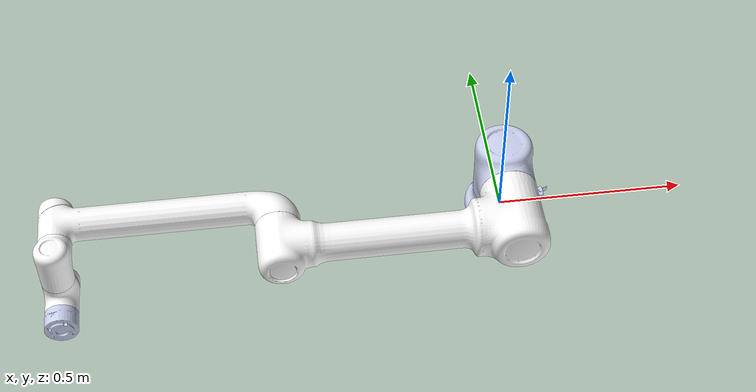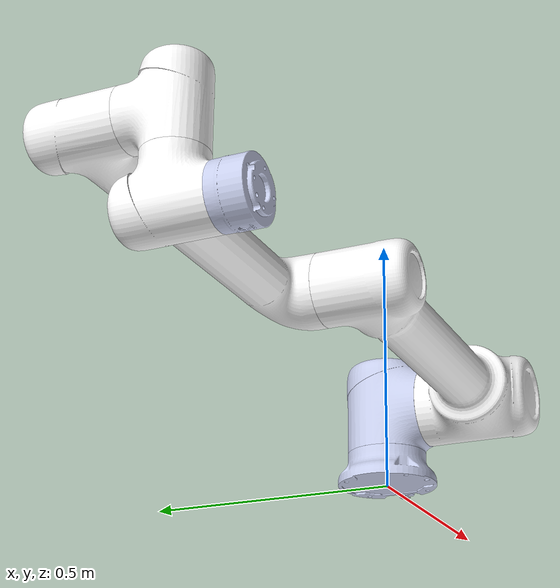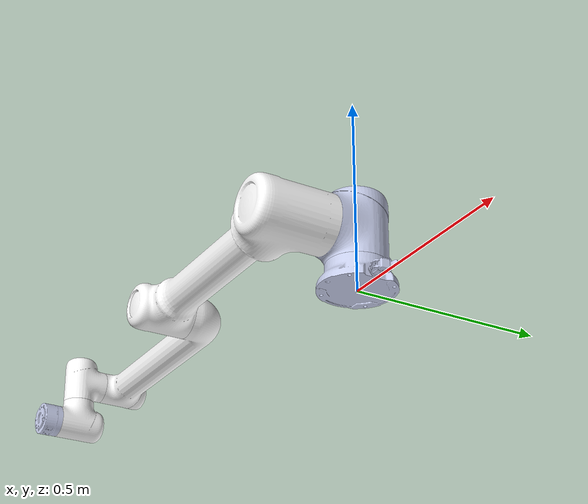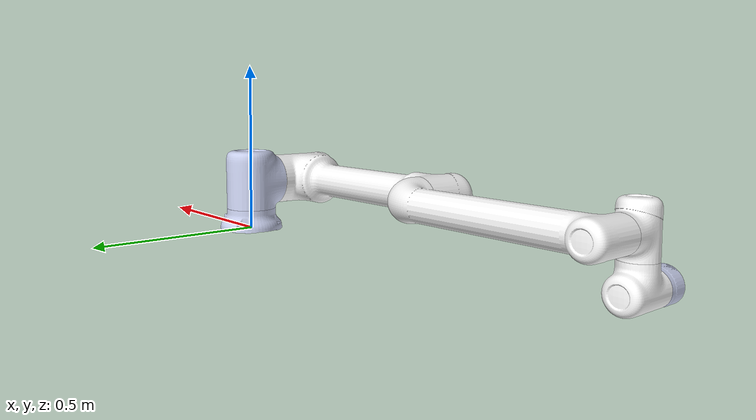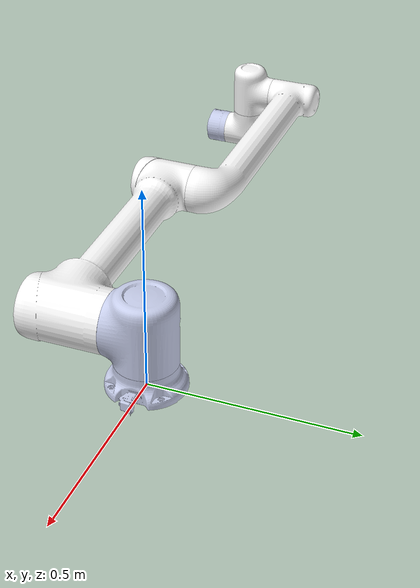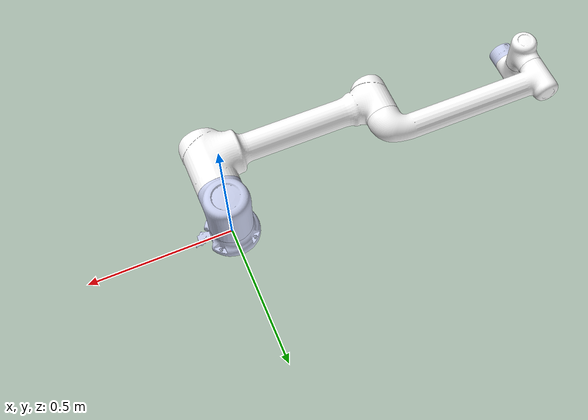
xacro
<robot
  name="S10" xmlns:xacro="http://www.ros.org/wiki/xacro">

  <xacro:include filename="$(find elfin_description)/urdf/materials.xacro" />

  <xacro:include filename="$(find elfin_description)/urdf/elfin_robot.gazebo" />

  <xacro:include filename="$(find elfin_description)/urdf/elfin_transmission.xacro" />

  <xacro:property name="PI" value="3.1415926535897931"/>

  <xacro:property name="density" value="3.09"/>

  <link name="world"/>

  <joint name="world_base" type="fixed">
    <origin
      xyz="0 0 0"
      rpy="0 0 0" />
    <parent
      link="world" />
    <child
      link="elfin_base_link" />
  </joint>

  <link name="elfin_base_link"/>

  <joint name="elfin_base_joint" type="fixed">
    <origin
      xyz="0 0 0"
      rpy="0 0 0" />
    <parent
      link="elfin_base_link" />
    <child
      link="elfin_base" />
  </joint>

 <link
    name="elfin_base">
    <inertial>
      <origin
        xyz="-0.000689995421551917 -3.87523607982444E-07 0.0296291279481493"
        rpy="0 0 0" />
      <mass
        value="1.24677304141836" />
      <inertia
        ixx="0.00263087425363564"
        ixy="-4.77205819453051E-08"
        ixz="-3.23188204694886E-05"
        iyy="0.00244269877149153"
        iyz="1.86348803277392E-07"
        izz="0.00435386935967542" />
    </inertial>
    <visual>
      <origin
        xyz="0 0 0"
        rpy="0 0 0" />
      <geometry>
        <mesh
          filename="package://elfin_description/meshes/S10/base_link.STL" />
      </geometry>
      <material
        name="">
        <color
          rgba="0.792156862745098 0.819607843137255 0.933333333333333 1" />
      </material>
    </visual>
    <collision>
      <origin
        xyz="0 0 0"
        rpy="0 0 0" />
      <geometry>
        <mesh
          filename="package://elfin_description/meshes/S10/base_link.STL" />
      </geometry>
    </collision>
  </link>
  <link
    name="elfin_link1">
    <inertial>
      <origin
        xyz="9.21033366351058E-05 -0.00732055272750769 0.00386261777474098"
        rpy="0 0 0" />
      <mass
        value="3.40942826030697" />
      <inertia
        ixx="0.0101440881820088"
        ixy="-1.53207568836086E-08"
        ixz="-2.30886878764828E-07"
        iyy="0.00981623503335888"
        iyz="0.000934796208746338"
        izz="0.0107770950300348" />
    </inertial>
    <visual>
      <origin
        xyz="0 0 0"
        rpy="0 0 0" />
      <geometry>
        <mesh
          filename="package://elfin_description/meshes/S10/elfin_link1.STL" />
      </geometry>
      <material
        name="">
        <color
          rgba="0.792156862745098 0.819607843137255 0.933333333333333 1" />
      </material>
    </visual>
    <collision>
      <origin
        xyz="0 0 0"
        rpy="0 0 0" />
      <geometry>
        <mesh
          filename="package://elfin_description/meshes/S10/elfin_link1.STL" />
      </geometry>
    </collision>
  </link>
  <joint
    name="elfin_joint1"
    type="revolute">
    <origin
      xyz="0 0 0.1475"
      rpy="0 0 0" />
    <parent
      link="elfin_base" />
    <child
      link="elfin_link1" />
    <axis
      xyz="0 0 1" />
     <limit
      lower="-6.28"
      upper="6.28"
      effort="200"
      velocity="1.57" />

  </joint>
  <link
    name="elfin_link2">
    <inertial>
      <origin
        xyz="-0.234898021041526 -1.34386942168829E-06 0.00384720029148281"
        rpy="0 0 0" />
      <mass
        value="10.5561655840057" />
      <inertia
        ixx="0.0206089583092019"
        ixy="-1.12337796751226E-07"
        ixz="0.000791846339970547"
        iyy="0.07985135943879"
        iyz="4.7522218283647E-07"
        izz="0.0824386555759762" />
    </inertial>
    <visual>
      <origin
        xyz="0 0 0"
        rpy="0 0 0" />
      <geometry>
        <mesh
          filename="package://elfin_description/meshes/S10/elfin_link2.STL" />
      </geometry>
      <material
        name="">
        <color
          rgba="1 1 1 1" />
      </material>
    </visual>
    <collision>
      <origin
        xyz="0 0 0"
        rpy="0 0 0" />
      <geometry>
        <mesh
          filename="package://elfin_description/meshes/S10/elfin_link2.STL" />
      </geometry>
    </collision>
  </link>
  <joint
    name="elfin_joint2"
    type="revolute">
    <origin
      xyz="0 -0.1985 0"
      rpy="1.5708 0 0" />
    <parent
      link="elfin_link1" />
    <child
      link="elfin_link2" />
    <axis
      xyz="0 0 1" />
    <limit
      lower="-3.3158"
      upper="0.1745"
      effort="200"
      velocity="1.57" />

  </joint>
  <link
    name="elfin_link3">
    <inertial>
      <origin
        xyz="0.28618546556784 -7.19444341629183E-07 0.00545030008103319"
        rpy="0 0 0" />
      <mass
        value="2.44937159597388" />
      <inertia
        ixx="0.00330024844933195"
        ixy="4.29301771611187E-08"
        ixz="0.000125119271439739"
        iyy="0.0135075294410659"
        iyz="4.54899840941171E-08"
        izz="0.0135502283012789" />
    </inertial>
    <visual>
      <origin
        xyz="0 0 0"
        rpy="0 0 0" />
      <geometry>
        <mesh
          filename="package://elfin_description/meshes/S10/elfin_link3.STL" />
      </geometry>
      <material
        name="">
        <color
          rgba="1 1 1 1" />
      </material>
    </visual>
    <collision>
      <origin
        xyz="0 0 0"
        rpy="0 0 0" />
      <geometry>
        <mesh
          filename="package://elfin_description/meshes/S10/elfin_link3.STL" />
      </geometry>
    </collision>
  </link>
  <joint
    name="elfin_joint3"
    type="revolute">
    <origin
      xyz="-0.607 0 -0.138"
      rpy="0 0 3.1416" />
    <parent
      link="elfin_link2" />
    <child
      link="elfin_link3" />
    <axis
      xyz="0 0 1" />
  <limit
      lower="-2.7574"
      upper="2.7574"
      effort="200"
      velocity="1.57" />

  </joint>
  <link
    name="elfin_link4">
    <inertial>
      <origin
        xyz="-2.68032555594822E-06 -0.0041833748582395 0.117697773477595"
        rpy="0 0 0" />
      <mass
        value="0.882458012195318" />
      <inertia
        ixx="0.00107471063302588"
        ixy="8.37103977908353E-09"
        ixz="5.5543704170088E-10"
        iyy="0.00105059725110477"
        iyz="-0.000131913733193584"
        izz="0.00090343661375044" />
    </inertial>
    <visual>
      <origin
        xyz="0 0 0"
        rpy="0 0 0" />
      <geometry>
        <mesh
          filename="package://elfin_description/meshes/S10/elfin_link4.STL" />
      </geometry>
      <material
        name="">
        <color
          rgba="1 1 1 1" />
      </material>
    </visual>
    <collision>
      <origin
        xyz="0 0 0"
        rpy="0 0 0" />
      <geometry>
        <mesh
          filename="package://elfin_description/meshes/S10/elfin_link4.STL" />
      </geometry>
    </collision>
  </link>
  <joint
    name="elfin_joint4"
    type="revolute">
    <origin
      xyz="0.566 0 0"
      rpy="0 0 0" />
    <parent
      link="elfin_link3" />
    <child
      link="elfin_link4" />
    <axis
      xyz="0 0 1" />
   <limit
      lower="-6.28"
      upper="6.28"
      effort="104"
      velocity="1.57" />

  </joint>
  <link
    name="elfin_link5">
    <inertial>
      <origin
        xyz="2.68032558747855E-06 0.00418337485824885 0.117697773477604"
        rpy="0 0 0" />
      <mass
        value="0.88245801219532" />
      <inertia
        ixx="0.00107471063302588"
        ixy="8.37103983303486E-09"
        ixz="-5.5543717498142E-10"
        iyy="0.00105059725110479"
        iyz="0.00013191373319357"
        izz="0.000903436613750422" />
    </inertial>
    <visual>
      <origin
        xyz="0 0 0"
        rpy="0 0 0" />
      <geometry>
        <mesh
          filename="package://elfin_description/meshes/S10/elfin_link5.STL" />
      </geometry>
      <material
        name="">
        <color
          rgba="1 1 1 1" />
      </material>
    </visual>
    <collision>
      <origin
        xyz="0 0 0"
        rpy="0 0 0" />
      <geometry>
        <mesh
          filename="package://elfin_description/meshes/S10/elfin_link5.STL" />
      </geometry>
    </collision>
  </link>
  <joint
    name="elfin_joint5"
    type="revolute">
    <origin
      xyz="0 0 0.127"
      rpy="-1.5708 0 0" />
    <parent
      link="elfin_link4" />
    <child
      link="elfin_link5" />
    <axis
      xyz="0 0 1" />
     <limit
      lower="-6.28"
      upper="6.28"
      effort="34"
      velocity="1.57" />

  </joint>
  <link
    name="elfin_link6">
    <inertial>
      <origin
        xyz="-2.31385188431688E-05 2.49526971980926E-05 0.0891151612227123"
        rpy="0 0 0" />
      <mass
        value="0.264620726757629" />
      <inertia
        ixx="0.000151185898528459"
        ixy="-7.95252622114695E-07"
        ixz="7.35027240648676E-08"
        iyy="0.000153080559638198"
        iyz="2.09122189039426E-09"
        izz="0.000263432071146885" />
    </inertial>
    <visual>
      <origin
        xyz="0 0 0"
        rpy="0 0 0" />
      <geometry>
        <mesh
          filename="package://elfin_description/meshes/S10/elfin_link6.STL" />
      </geometry>
      <material
        name="">
        <color
          rgba="0.792156862745098 0.819607843137255 0.933333333333333 1" />
      </material>
    </visual>
    <collision>
      <origin
        xyz="0 0 0"
        rpy="0 0 0" />
      <geometry>
        <mesh
          filename="package://elfin_description/meshes/S10/elfin_link6.STL" />
      </geometry>
    </collision>
  </link>
  <joint
    name="elfin_joint6"
    type="revolute">
    <origin
      xyz="0 0 0.127"
      rpy="1.5708 0 0" />
    <parent
      link="elfin_link5" />
    <child
      link="elfin_link6" />
    <axis
      xyz="0 0 1" />
   <limit
      lower="-6.28"
      upper="6.28"
      effort="34"
      velocity="1.57" />

  </joint>
  <link
    name="elfin_end_link">
  </link>
  <joint
    name="elfin_end_joint"
    type="fixed">
    <origin
      xyz="0 0 0.1155"
      rpy="0 0 3.1416" />
    <parent
      link="elfin_link6" />
    <child
      link="elfin_end_link" />
  </joint>

  <link name="elfin_dummy_gripper"/>

  <joint name="elfin_dummy_joint" type="fixed">
    <origin
      xyz="0 -0.0935 0"
      rpy="${PI/2} ${PI/2} 0" />
    <parent
      link="elfin_link6" />
    <child
      link="elfin_dummy_gripper" />
  </joint>

</robot>
